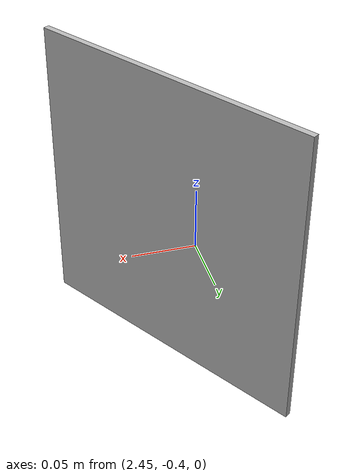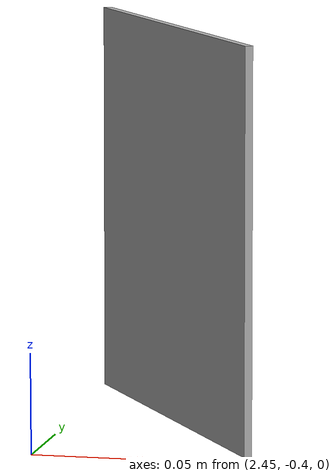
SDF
<?xml version="1.0" ?><sdf version="1.6">
  <model name="qr6">
    <static>true</static>
    <link name="link">
      <visual name="visual">
        <geometry>
          <mesh>
            <uri>model://qr6/meshes/qr6.dae</uri>
          <scale>0.4 0.4 0.4</scale></mesh>
        </geometry>
      </visual>
    </link>
    <pose>2.5 -0.3 0 0 -0 0.57</pose>
  </model>
</sdf>
